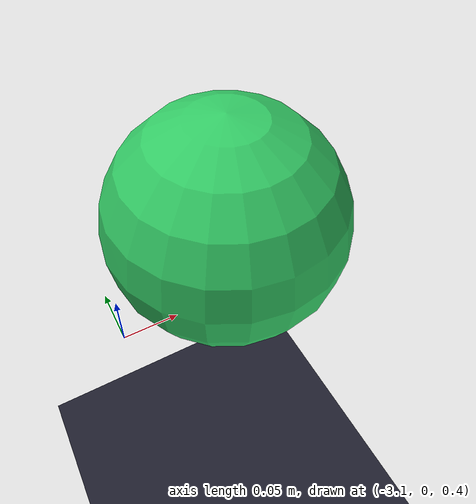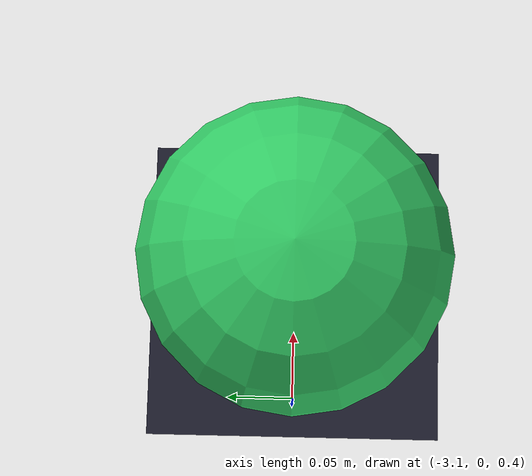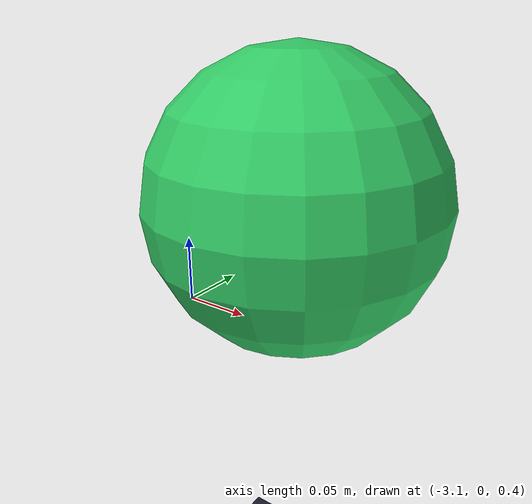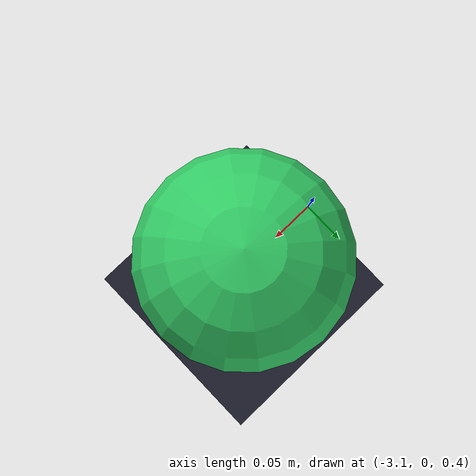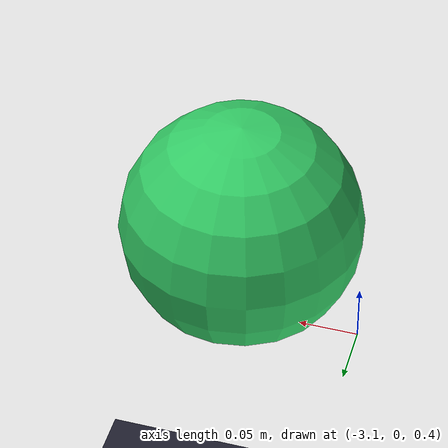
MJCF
<mujoco model="frictionless_push">
  <option timestep="0.002" gravity="0 0 0" integrator="RK4"/>
  <!-- No gravity: top-down view of frictionless surface -->

  <asset>
    <material name="ground" rgba="0.12 0.12 0.18 1" specular="0" shininess="0"/>
  </asset>

  <worldbody>
    <light pos="0 0 5" dir="0 0 -1" diffuse="0.8 0.8 0.8" castshadow="false"/>
    <light pos="0 -3 3" dir="0 0.5 -0.5" diffuse="0.4 0.4 0.5"/>

    <!-- Ground reference plane (visual only, represents frictionless surface from above) -->
    <geom type="plane" size="5 5 0.01" material="ground" contype="0" conaffinity="0"/>

    <!-- The puck/ball on frictionless surface -->
    <body name="ball" pos="-3 0 0.5">
      <joint type="free" damping="0"/>
      <geom type="sphere" size="0.1" mass="1.0" rgba="0.2 0.8 0.4 1"
            contype="0" conaffinity="0"/>
      <site name="force_point" pos="0 0 0" size="0.01"/>
    </body>

    <!-- Cameras -->
    <camera name="side" pos="0 -4 1.0" xyaxes="1 0 0 0 0.3 1"/>
    <camera name="top" pos="0 0 5" xyaxes="1 0 0 0 1 0"/>
  </worldbody>

  <actuator>
    <!-- Horizontal push force (brief impulse, then released) -->
    <motor name="push_force" site="force_point" gear="1 0 0 0 0 0"
           ctrllimited="true" ctrlrange="0 50"/>
  </actuator>

  <sensor>
    <framepos name="ball_pos" objtype="body" objname="ball"/>
    <framelinvel name="ball_vel" objtype="body" objname="ball"/>
  </sensor>
</mujoco>
